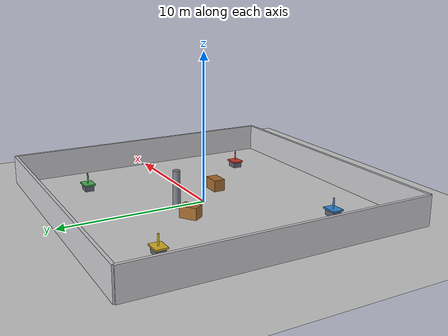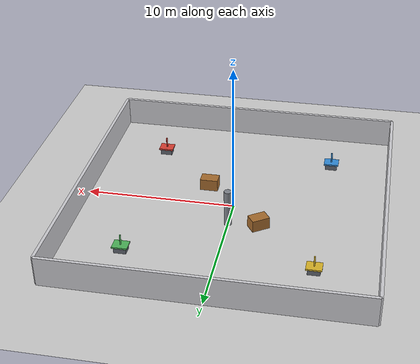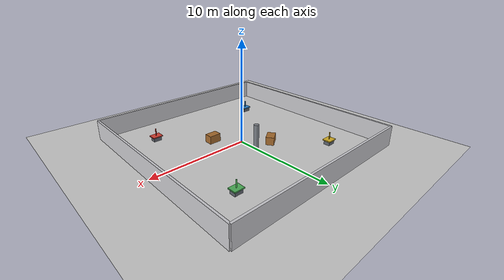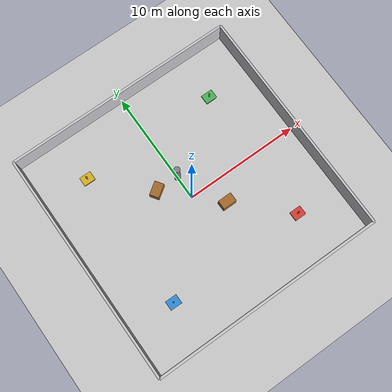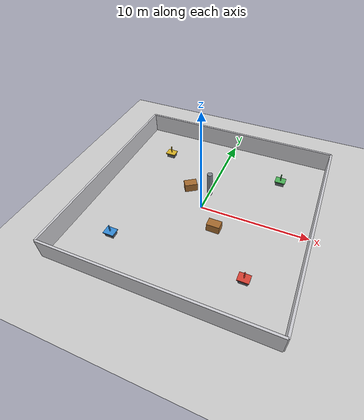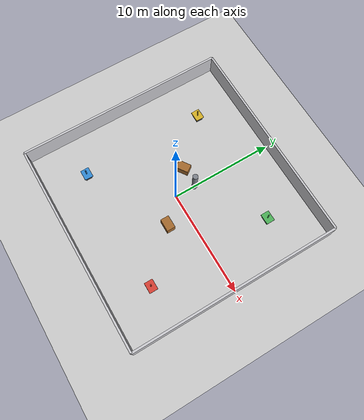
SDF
<?xml version="1.0"?>
<!--
  warehouse.world — Foil_A082 주행 확인용 최소 환경.

  넓은 바닥 + 벽 몇 개 + 파렛트 박스 몇 개. 라이다가 볼 대상이 있어야
  scan_front / scan_rear 가 의미 있는 데이터를 낸다.
  로봇 자체는 launch 에서 spawn_entity 로 넣는다(월드에 하드코딩하지 않음).
-->
<sdf version="1.6">
  <world name="warehouse">

    <include><uri>model://sun</uri></include>
    <include><uri>model://ground_plane</uri></include>

    <physics type="ode">
      <max_step_size>0.001</max_step_size>
      <real_time_factor>1.0</real_time_factor>
      <real_time_update_rate>1000</real_time_update_rate>
      <ode>
        <solver>
          <type>quick</type>
          <iters>100</iters>
          <sor>1.3</sor>
        </solver>
        <constraints>
          <cfm>0.0</cfm>
          <erp>0.2</erp>
          <contact_max_correcting_vel>100.0</contact_max_correcting_vel>
          <contact_surface_layer>0.001</contact_surface_layer>
        </constraints>
      </ode>
    </physics>

    <scene>
      <ambient>0.6 0.6 0.6 1</ambient>
      <background>0.75 0.80 0.86 1</background>
      <shadows>true</shadows>
    </scene>

    <model name="wall_north">
      <static>true</static>
      <pose>0 10 1 0 0 0</pose>
      <link name="link">
        <collision name="c"><geometry><box><size>20 0.2 2</size></box></geometry></collision>
        <visual name="v">
          <geometry><box><size>20 0.2 2</size></box></geometry>
          <material><ambient>0.7 0.7 0.72 1</ambient><diffuse>0.8 0.8 0.82 1</diffuse></material>
        </visual>
      </link>
    </model>

    <model name="wall_south">
      <static>true</static>
      <pose>0 -10 1 0 0 0</pose>
      <link name="link">
        <collision name="c"><geometry><box><size>20 0.2 2</size></box></geometry></collision>
        <visual name="v">
          <geometry><box><size>20 0.2 2</size></box></geometry>
          <material><ambient>0.7 0.7 0.72 1</ambient><diffuse>0.8 0.8 0.82 1</diffuse></material>
        </visual>
      </link>
    </model>

    <model name="wall_east">
      <static>true</static>
      <pose>10 0 1 0 0 0</pose>
      <link name="link">
        <collision name="c"><geometry><box><size>0.2 20 2</size></box></geometry></collision>
        <visual name="v">
          <geometry><box><size>0.2 20 2</size></box></geometry>
          <material><ambient>0.7 0.7 0.72 1</ambient><diffuse>0.8 0.8 0.82 1</diffuse></material>
        </visual>
      </link>
    </model>

    <model name="wall_west">
      <static>true</static>
      <pose>-10 0 1 0 0 0</pose>
      <link name="link">
        <collision name="c"><geometry><box><size>0.2 20 2</size></box></geometry></collision>
        <visual name="v">
          <geometry><box><size>0.2 20 2</size></box></geometry>
          <material><ambient>0.7 0.7 0.72 1</ambient><diffuse>0.8 0.8 0.82 1</diffuse></material>
        </visual>
      </link>
    </model>

    <!-- ===== 파렛트 (라이다 표적 / 회피 대상) ===== -->
    <model name="pallet_a">
      <static>true</static>
      <pose>2.0 -2.0 0.4 0 0 0</pose>
      <link name="link">
        <collision name="c"><geometry><box><size>1.2 0.8 0.8</size></box></geometry></collision>
        <visual name="v">
          <geometry><box><size>1.2 0.8 0.8</size></box></geometry>
          <material><ambient>0.55 0.35 0.15 1</ambient><diffuse>0.65 0.42 0.18 1</diffuse></material>
        </visual>
      </link>
    </model>

    <model name="pallet_b">
      <static>true</static>
      <pose>-2.0 2.0 0.4 0 0 0.6</pose>
      <link name="link">
        <collision name="c"><geometry><box><size>1.2 0.8 0.8</size></box></geometry></collision>
        <visual name="v">
          <geometry><box><size>1.2 0.8 0.8</size></box></geometry>
          <material><ambient>0.55 0.35 0.15 1</ambient><diffuse>0.65 0.42 0.18 1</diffuse></material>
        </visual>
      </link>
    </model>

    <model name="pillar">
      <static>true</static>
      <pose>0 2.0 1.25 0 0 0</pose>
      <link name="link">
        <collision name="c"><geometry><cylinder><radius>0.25</radius><length>2.5</length></cylinder></geometry></collision>
        <visual name="v">
          <geometry><cylinder><radius>0.25</radius><length>2.5</length></cylinder></geometry>
          <material><ambient>0.4 0.42 0.45 1</ambient><diffuse>0.5 0.52 0.55 1</diffuse></material>
        </visual>
      </link>
    </model>

    <model name="station_3">
      <static>true</static>
      <pose>6.0 -6.0 0 0 0 0</pose>
      <link name="link">
        <!-- table top -->
        <collision name="top_c">
          <pose>0 0 0.45 0 0 0</pose>
          <geometry><box><size>1.0 0.8 0.1</size></box></geometry>
        </collision>
        <visual name="top_v">
          <pose>0 0 0.45 0 0 0</pose>
          <geometry><box><size>1.0 0.8 0.1</size></box></geometry>
          <material>
            <ambient>0.85 0.25 0.20 1</ambient><diffuse>0.85 0.25 0.20 1</diffuse>
          </material>
        </visual>
        <!-- legs, as one block: keeps the model cheap and still blocks the robot -->
        <collision name="base_c">
          <pose>0 0 0.2 0 0 0</pose>
          <geometry><box><size>0.8 0.6 0.4</size></box></geometry>
        </collision>
        <visual name="base_v">
          <pose>0 0 0.2 0 0 0</pose>
          <geometry><box><size>0.8 0.6 0.4</size></box></geometry>
          <material>
            <ambient>0.30 0.32 0.35 1</ambient><diffuse>0.38 0.40 0.44 1</diffuse>
          </material>
        </visual>
        <!-- post so the station is identifiable from across the hall -->
        <visual name="post_v">
          <pose>0 0 0.85 0 0 0</pose>
          <geometry><cylinder><radius>0.05</radius><length>0.7</length></cylinder></geometry>
          <material>
            <ambient>0.85 0.25 0.20 1</ambient><diffuse>0.85 0.25 0.20 1</diffuse>
          </material>
        </visual>
      </link>
    </model>
    <model name="station_5">
      <static>true</static>
      <pose>-6.0 -6.0 0 0 0 0</pose>
      <link name="link">
        <!-- table top -->
        <collision name="top_c">
          <pose>0 0 0.45 0 0 0</pose>
          <geometry><box><size>1.0 0.8 0.1</size></box></geometry>
        </collision>
        <visual name="top_v">
          <pose>0 0 0.45 0 0 0</pose>
          <geometry><box><size>1.0 0.8 0.1</size></box></geometry>
          <material>
            <ambient>0.20 0.55 0.85 1</ambient><diffuse>0.20 0.55 0.85 1</diffuse>
          </material>
        </visual>
        <!-- legs, as one block: keeps the model cheap and still blocks the robot -->
        <collision name="base_c">
          <pose>0 0 0.2 0 0 0</pose>
          <geometry><box><size>0.8 0.6 0.4</size></box></geometry>
        </collision>
        <visual name="base_v">
          <pose>0 0 0.2 0 0 0</pose>
          <geometry><box><size>0.8 0.6 0.4</size></box></geometry>
          <material>
            <ambient>0.30 0.32 0.35 1</ambient><diffuse>0.38 0.40 0.44 1</diffuse>
          </material>
        </visual>
        <!-- post so the station is identifiable from across the hall -->
        <visual name="post_v">
          <pose>0 0 0.85 0 0 0</pose>
          <geometry><cylinder><radius>0.05</radius><length>0.7</length></cylinder></geometry>
          <material>
            <ambient>0.20 0.55 0.85 1</ambient><diffuse>0.20 0.55 0.85 1</diffuse>
          </material>
        </visual>
      </link>
    </model>
    <model name="station_9">
      <static>true</static>
      <pose>6.0 6.0 0 0 0 0</pose>
      <link name="link">
        <!-- table top -->
        <collision name="top_c">
          <pose>0 0 0.45 0 0 0</pose>
          <geometry><box><size>1.0 0.8 0.1</size></box></geometry>
        </collision>
        <visual name="top_v">
          <pose>0 0 0.45 0 0 0</pose>
          <geometry><box><size>1.0 0.8 0.1</size></box></geometry>
          <material>
            <ambient>0.30 0.70 0.35 1</ambient><diffuse>0.30 0.70 0.35 1</diffuse>
          </material>
        </visual>
        <!-- legs, as one block: keeps the model cheap and still blocks the robot -->
        <collision name="base_c">
          <pose>0 0 0.2 0 0 0</pose>
          <geometry><box><size>0.8 0.6 0.4</size></box></geometry>
        </collision>
        <visual name="base_v">
          <pose>0 0 0.2 0 0 0</pose>
          <geometry><box><size>0.8 0.6 0.4</size></box></geometry>
          <material>
            <ambient>0.30 0.32 0.35 1</ambient><diffuse>0.38 0.40 0.44 1</diffuse>
          </material>
        </visual>
        <!-- post so the station is identifiable from across the hall -->
        <visual name="post_v">
          <pose>0 0 0.85 0 0 0</pose>
          <geometry><cylinder><radius>0.05</radius><length>0.7</length></cylinder></geometry>
          <material>
            <ambient>0.30 0.70 0.35 1</ambient><diffuse>0.30 0.70 0.35 1</diffuse>
          </material>
        </visual>
      </link>
    </model>
    <model name="station_out">
      <static>true</static>
      <pose>-6.0 6.0 0 0 0 0</pose>
      <link name="link">
        <!-- table top -->
        <collision name="top_c">
          <pose>0 0 0.45 0 0 0</pose>
          <geometry><box><size>1.0 0.8 0.1</size></box></geometry>
        </collision>
        <visual name="top_v">
          <pose>0 0 0.45 0 0 0</pose>
          <geometry><box><size>1.0 0.8 0.1</size></box></geometry>
          <material>
            <ambient>0.85 0.70 0.15 1</ambient><diffuse>0.85 0.70 0.15 1</diffuse>
          </material>
        </visual>
        <!-- legs, as one block: keeps the model cheap and still blocks the robot -->
        <collision name="base_c">
          <pose>0 0 0.2 0 0 0</pose>
          <geometry><box><size>0.8 0.6 0.4</size></box></geometry>
        </collision>
        <visual name="base_v">
          <pose>0 0 0.2 0 0 0</pose>
          <geometry><box><size>0.8 0.6 0.4</size></box></geometry>
          <material>
            <ambient>0.30 0.32 0.35 1</ambient><diffuse>0.38 0.40 0.44 1</diffuse>
          </material>
        </visual>
        <!-- post so the station is identifiable from across the hall -->
        <visual name="post_v">
          <pose>0 0 0.85 0 0 0</pose>
          <geometry><cylinder><radius>0.05</radius><length>0.7</length></cylinder></geometry>
          <material>
            <ambient>0.85 0.70 0.15 1</ambient><diffuse>0.85 0.70 0.15 1</diffuse>
          </material>
        </visual>
      </link>
    </model>

    <gui>
      <camera name="user_camera">
        <pose>-6.5 -6.5 5.5 0 0.45 0.78</pose>
      </camera>
    </gui>
    <plugin name="gazebo_ros_state" filename="libgazebo_ros_state.so">
      <ros>
        <namespace>/gazebo</namespace>
      </ros>
      <update_rate>30.0</update_rate>
    </plugin>

  </world>
</sdf>
